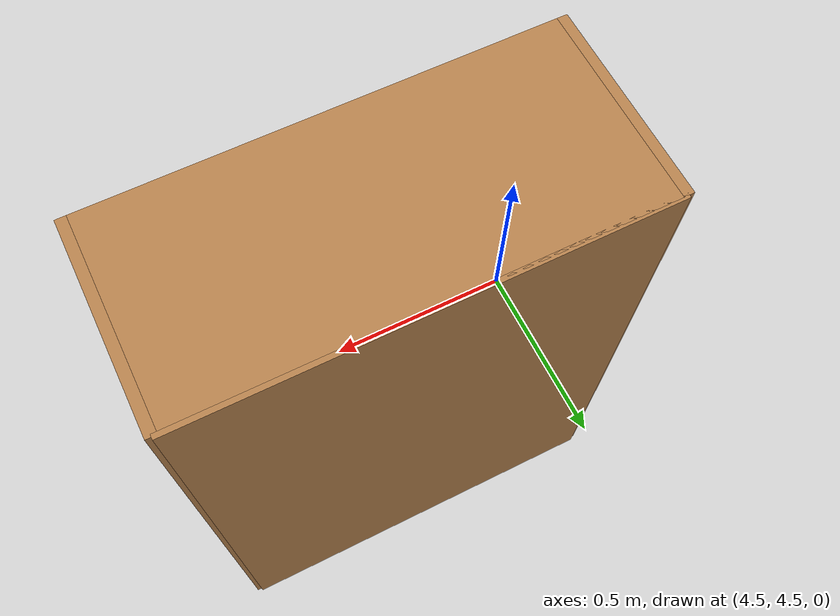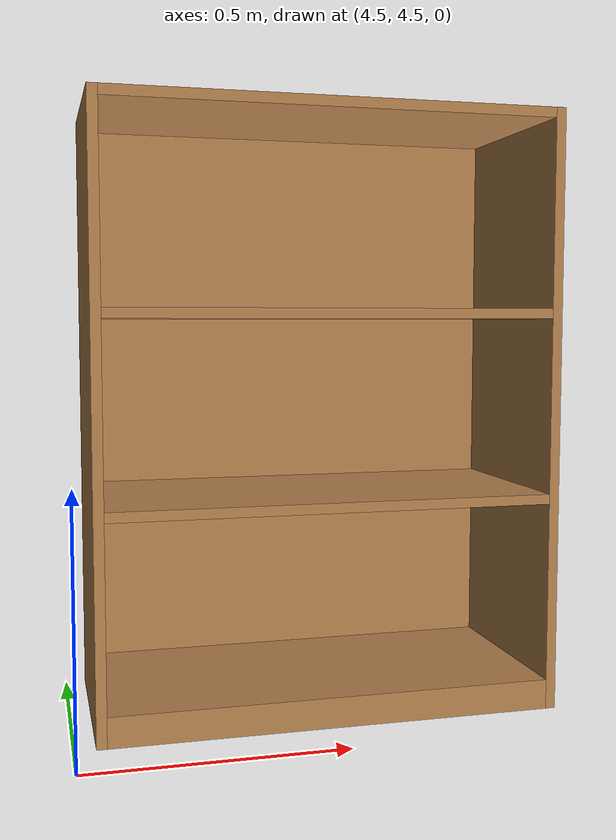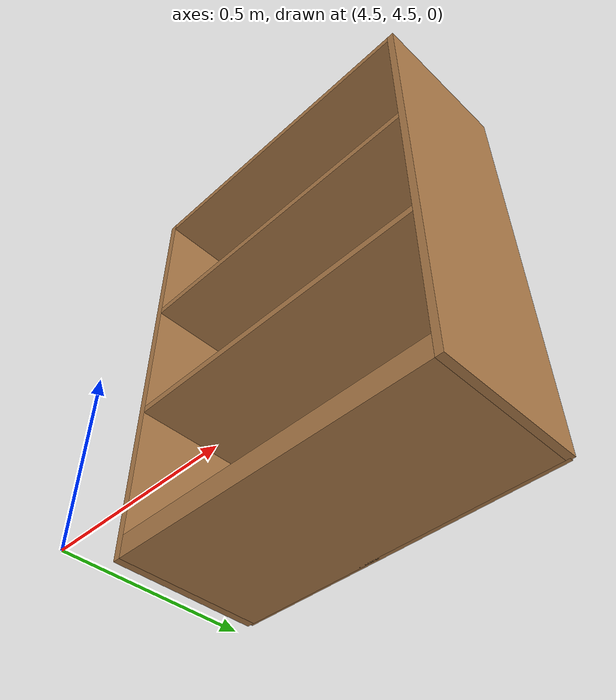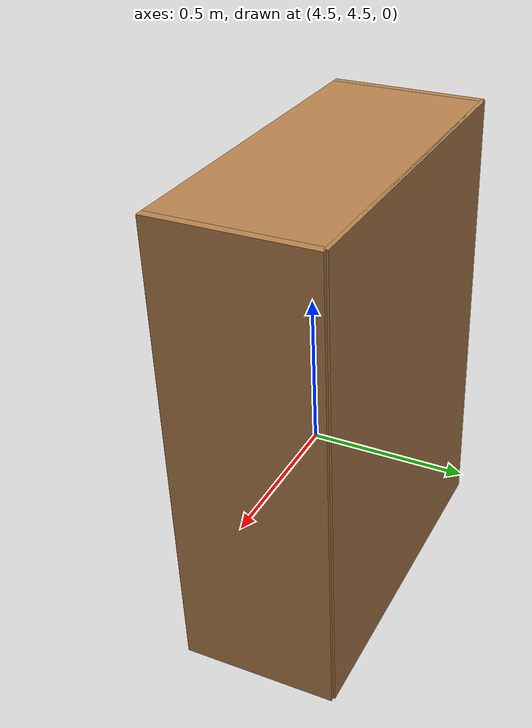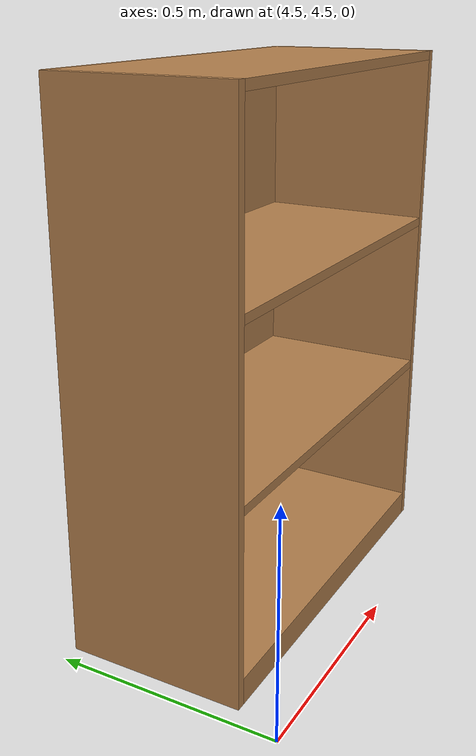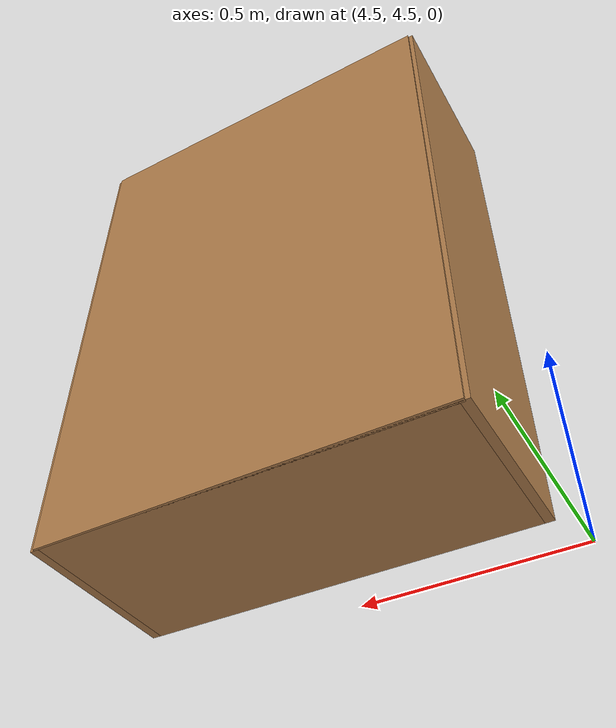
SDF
<?xml version="1.0" ?>
<sdf version="1.5">
  <model name="bookshelf">
    <static>true</static>
    <link name="link">
      <pose frame=''>5 5 0 0 -0 0</pose>
      <inertial>
        <mass>1.0</mass>
      </inertial>
      <collision name="back">
        <pose>0 0.005 0.6 0 0 0</pose>
        <geometry>
          <box>
            <size>0.9 0.01 1.2</size>
          </box>
        </geometry>
      </collision>
      <visual name="visual1">
        <pose>0 0.005 0.6 0 0 0</pose>
        <geometry>
          <box>
            <size>0.9 0.01 1.2</size>
          </box>
        </geometry>
        <material>
          <script>
            <uri>file://media/materials/scripts/gazebo.material</uri>
            <name>Gazebo/Wood</name>
          </script>
        </material>
      </visual>
      <collision name="left_side">
        <pose>0.45 -0.195 0.6 0 0 0</pose>
        <geometry>
          <box>
            <size>0.02 0.4 1.2</size>
          </box>
        </geometry>
      </collision>
      <visual name="visual2">
        <pose>0.45 -0.195 0.6 0 0 0</pose>
        <geometry>
          <box>
            <size>0.02 0.4 1.2</size>
          </box>
        </geometry>
        <material>
          <script>
            <uri>file://media/materials/scripts/gazebo.material</uri>
            <name>Gazebo/Wood</name>
          </script>
        </material>
      </visual>
      <collision name="right_side">
        <pose>-0.45 -0.195 0.6 0 0 0</pose>
        <geometry>
          <box>
            <size>0.02 0.4 1.2</size>
          </box>
        </geometry>
      </collision>
      <visual name="visual3">
        <pose>-0.45 -0.195 0.6 0 0 0</pose>
        <geometry>
          <box>
            <size>0.02 0.4 1.2</size>
          </box>
        </geometry>
        <material>
          <script>
            <uri>file://media/materials/scripts/gazebo.material</uri>
            <name>Gazebo/Wood</name>
          </script>
        </material>
      </visual>
      <collision name="bottom">
        <pose>0 -0.195 0.03 0 0 0</pose>
        <geometry>
          <box>
            <size>0.88 0.4 0.06</size>
          </box>
        </geometry>
      </collision>
      <visual name="visual4">
        <pose>0 -0.195 0.03 0 0 0</pose>
        <geometry>
          <box>
            <size>0.88 0.4 0.06</size>
          </box>
        </geometry>
        <material>
          <script>
            <uri>file://media/materials/scripts/gazebo.material</uri>
            <name>Gazebo/Wood</name>
          </script>
        </material>
      </visual>
      <collision name="top">
        <pose>0 -0.195 1.19 0 0 0</pose>
        <geometry>
          <box>
            <size>0.88 0.4 0.02</size>
          </box>
        </geometry>
      </collision>
      <visual name="visual5">
        <pose>0 -0.195 1.19 0 0 0</pose>
        <geometry>
          <box>
            <size>0.88 0.4 0.02</size>
          </box>
        </geometry>
        <material>
          <script>
            <uri>file://media/materials/scripts/gazebo.material</uri>
            <name>Gazebo/Wood</name>
          </script>
        </material>
      </visual>
      <collision name="low_shelf">
        <pose>0 -0.195 0.43 0 0 0</pose>
        <geometry>
          <box>
            <size>0.88 0.4 0.02</size>
          </box>
        </geometry>
      </collision>
      <visual name="visual6">
        <pose>0 -0.195 0.43 0 0 0</pose>
        <geometry>
          <box>
            <size>0.88 0.4 0.02</size>
          </box>
        </geometry>
        <material>
          <script>
            <uri>file://media/materials/scripts/gazebo.material</uri>
            <name>Gazebo/Wood</name>
          </script>
        </material>
      </visual>
      <collision name="high_shelf">
        <pose>0 -0.195 0.8 0 0 0</pose>
        <geometry>
          <box>
            <size>0.88 0.4 0.02</size>
          </box>
        </geometry>
      </collision>
      <visual name="visual7">
        <pose>0 -0.195 0.8 0 0 0</pose>
        <geometry>
          <box>
            <size>0.88 0.4 0.02</size>
          </box>
        </geometry>
        <material>
          <script>
            <uri>file://media/materials/scripts/gazebo.material</uri>
            <name>Gazebo/Wood</name>
          </script>
        </material>
      </visual>
    </link>
  </model>
</sdf>
